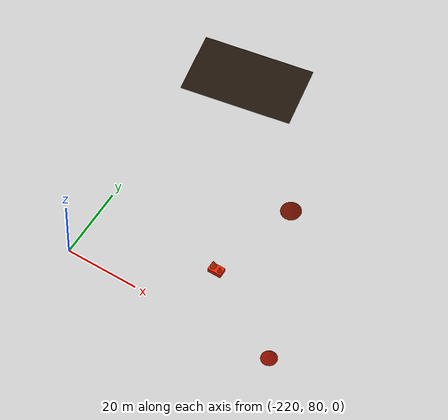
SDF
<?xml version="1.0" encoding="utf-8"?>
<sdf version="1.9">
  <model name="compact_thermal_sources">
    <static>true</static>
    <link name="thermal_signatures">
      <visual name="burnt_ground_01">
        <pose>-210 150 0.08 0 0 0.18</pose>
        <geometry><box><size>31 18 0.12</size></box></geometry>
        <material><ambient>0.08 0.055 0.035 1</ambient><diffuse>0.12 0.07 0.035 1</diffuse></material>
        <plugin filename="gz-sim-thermal-system" name="gz::sim::systems::Thermal">
          <temperature>323.15</temperature>
        </plugin>
      </visual>
      <visual name="hotspot_01_trunk">
        <pose>-178 120 1.4 0 0 0</pose>
        <geometry><cylinder><radius>1.1</radius><length>2.8</length></cylinder></geometry>
        <material><ambient>0.22 0.04 0.01 1</ambient><diffuse>0.42 0.08 0.01 1</diffuse></material>
        <plugin filename="gz-sim-thermal-system" name="gz::sim::systems::Thermal"><temperature>383.15</temperature></plugin>
      </visual>
      <visual name="hotspot_01_crown">
        <pose>-178 120 3.5 0 0 0</pose>
        <geometry><cone><radius>2.8</radius><length>4.2</length></cone></geometry>
        <material><ambient>0.3 0.05 0.01 1</ambient><diffuse>0.55 0.1 0.01 1</diffuse></material>
        <plugin filename="gz-sim-thermal-system" name="gz::sim::systems::Thermal"><temperature>383.15</temperature></plugin>
      </visual>
      <visual name="hotspot_02_trunk">
        <pose>-160 80 1.2 0 0 0</pose>
        <geometry><cylinder><radius>0.9</radius><length>2.4</length></cylinder></geometry>
        <material><ambient>0.28 0.035 0.005 1</ambient><diffuse>0.62 0.08 0.005 1</diffuse></material>
        <plugin filename="gz-sim-thermal-system" name="gz::sim::systems::Thermal"><temperature>418.15</temperature></plugin>
      </visual>
      <visual name="hotspot_02_crown">
        <pose>-160 80 3.0 0 0 0</pose>
        <geometry><cone><radius>2.2</radius><length>3.5</length></cone></geometry>
        <material><ambient>0.35 0.04 0.005 1</ambient><diffuse>0.72 0.09 0.005 1</diffuse></material>
        <plugin filename="gz-sim-thermal-system" name="gz::sim::systems::Thermal"><temperature>418.15</temperature></plugin>
      </visual>
      <visual name="fire_core_01_base">
        <pose>-185 95 0.65 0 0 0</pose>
        <geometry><box><size>3.8 2.4 1.3</size></box></geometry>
        <material><ambient>0.5 0.05 0.0 1</ambient><diffuse>0.95 0.12 0.0 1</diffuse></material>
        <plugin filename="gz-sim-thermal-system" name="gz::sim::systems::Thermal"><temperature>523.15</temperature></plugin>
      </visual>
      <visual name="fire_core_01_flame_left">
        <pose>-186.0 95.2 2.1 0 0 0</pose>
        <geometry><cone><radius>1.2</radius><length>3.6</length></cone></geometry>
        <material><ambient>0.7 0.15 0.0 1</ambient><diffuse>1 0.25 0.0 1</diffuse></material>
        <plugin filename="gz-sim-thermal-system" name="gz::sim::systems::Thermal"><temperature>523.15</temperature></plugin>
      </visual>
      <visual name="fire_core_01_flame_right">
        <pose>-183.9 94.8 1.7 0 0 0</pose>
        <geometry><cone><radius>0.9</radius><length>2.9</length></cone></geometry>
        <material><ambient>0.7 0.12 0.0 1</ambient><diffuse>1 0.2 0.0 1</diffuse></material>
        <plugin filename="gz-sim-thermal-system" name="gz::sim::systems::Thermal"><temperature>523.15</temperature></plugin>
      </visual>
    </link>
  </model>
</sdf>
